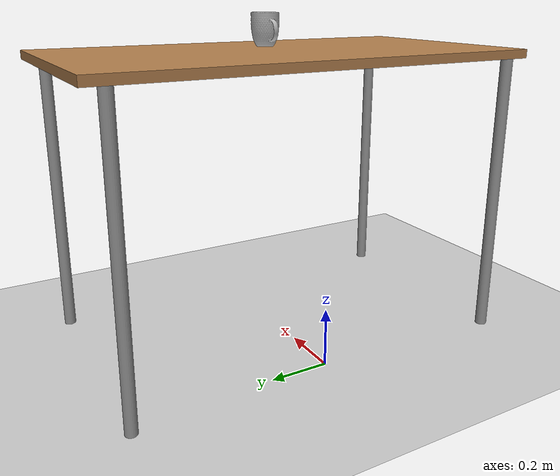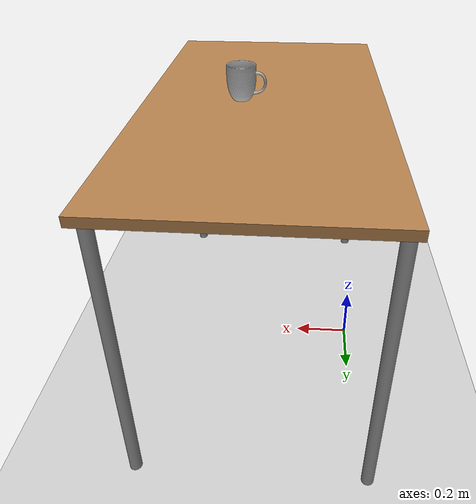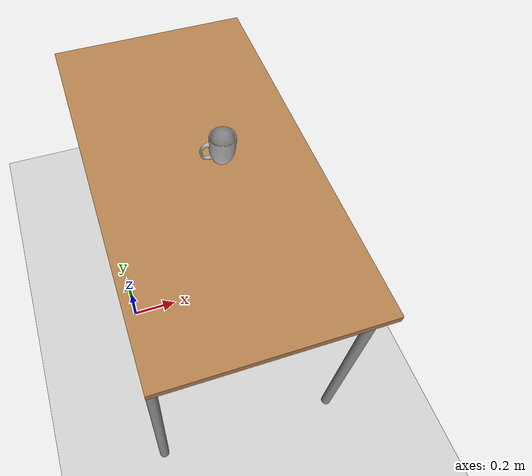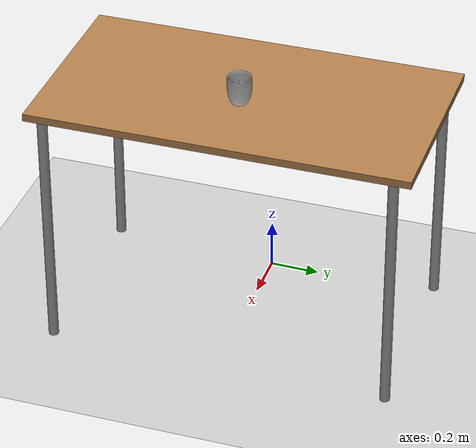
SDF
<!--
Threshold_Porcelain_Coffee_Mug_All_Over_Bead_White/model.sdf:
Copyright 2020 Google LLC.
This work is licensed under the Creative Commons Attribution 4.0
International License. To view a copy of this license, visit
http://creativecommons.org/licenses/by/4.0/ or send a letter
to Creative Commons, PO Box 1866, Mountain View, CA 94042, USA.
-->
<sdf version="1.7">
 <world name="default">
  <light name="sun" type="directional">
   <pose>0 0 10 0 -0 0</pose>
   <diffuse>0.8 0.8 0.8 1</diffuse>
   <specular>0.2 0.2 0.2 1</specular>
   <attenuation>
    <range>1000</range>
    <constant>0.9</constant>
    <linear>0.01</linear>
    <quadratic>0.001</quadratic>
   </attenuation>
   <direction>-0.5 0.1 -0.9</direction>
   <spot><inner_angle>0</inner_angle><outer_angle>0</outer_angle><falloff>0</falloff></spot>
  </light>
  <model name="ground_plane">
   <static>1</static>
   <link name="link">
    <collision name="collision">
     <geometry><plane><normal>0 0 1</normal><size>100 100</size></plane></geometry>
     <surface>
      <contact><collide_bitmask>65535</collide_bitmask></contact>
      <friction><ode><mu>100</mu><mu2>50</mu2></ode></friction>
     </surface>
    </collision>
    <visual name="visual">
     <cast_shadows>0</cast_shadows>
     <geometry><plane><normal>0 0 1</normal><size>100 100</size></plane></geometry>
     <material>
      <script><uri>file://media/materials/scripts/gazebo.material</uri><name>Gazebo/Grey</name></script>
     </material>
    </visual>
   </link>
  </model>
  <gravity>0 0 -9.8</gravity>
  <magnetic_field>6e-06 2.3e-05 -4.2e-05</magnetic_field>
  <atmosphere type="adiabatic"/>
  <physics type="ode">
   <max_step_size>0.001</max_step_size>
   <real_time_factor>1</real_time_factor>
   <real_time_update_rate>1000</real_time_update_rate>
  </physics>
  <scene><ambient>0.4 0.4 0.4 1</ambient><background>0.7 0.7 0.7 1</background><shadows>1</shadows></scene>
  <spherical_coordinates>
   <surface_model>EARTH_WGS84</surface_model>
   <latitude_deg>0</latitude_deg>
   <longitude_deg>0</longitude_deg>
   <elevation>0</elevation>
   <heading_deg>0</heading_deg>
  </spherical_coordinates>
  <include><uri>model://table</uri><pose>0.34 0 0 0 0 1.5708</pose></include>
  <include>
   <uri>https://fuel.gazebosim.org/GoogleResearch/models/Threshold_Porcelain_Coffee_Mug_All_Over_Bead_White</uri>
   <pose>0.4 0 1.02 0 0 0</pose>
  </include>
 </world>
</sdf>

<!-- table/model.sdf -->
<sdf version="1.5">
  <model name="table">
    <static>true</static>
    <link name="link">
      <collision name="surface">
        <pose>0 0 1.0 0 0 0</pose>
        <geometry>
          <box>
            <size>1.5 0.8 0.03</size>
          </box>
        </geometry>
        <surface>
          <friction>
            <ode>
              <mu>0.6</mu>
              <mu2>0.6</mu2>
            </ode>
          </friction>
        </surface>
      </collision>
      <visual name="visual1">
        <pose>0 0 1.0 0 0 0</pose>
        <geometry>
          <box>
            <size>1.5 0.8 0.03</size>
          </box>
        </geometry>
        <material>
          <script>
            <uri>model://media/materials/scripts/gazebo.material</uri>
            <name>Gazebo/Wood</name>
          </script>
        </material>
      </visual>
      <collision name="front_left_leg">
        <pose>0.68 0.38 0.5 0 0 0</pose>
        <geometry>
          <cylinder>
            <radius>0.02</radius>
            <length>1.0</length>
          </cylinder>
        </geometry>
      </collision>
      <visual name="front_left_leg">
        <pose>0.68 0.38 0.5 0 0 0</pose>
        <geometry>
          <cylinder>
            <radius>0.02</radius>
            <length>1.0</length>
          </cylinder>
        </geometry>
        <material>
          <script>
            <uri>model://media/materials/scripts/gazebo.material</uri>
            <name>Gazebo/Grey</name>
          </script>
        </material>
      </visual>
      <collision name="front_right_leg">
        <pose>0.68 -0.38 0.5 0 0 0</pose>
        <geometry>
          <cylinder>
            <radius>0.02</radius>
            <length>1.0</length>
          </cylinder>
        </geometry>
      </collision>
      <visual name="front_right_leg">
        <pose>0.68 -0.38 0.5 0 0 0</pose>
        <geometry>
          <cylinder>
            <radius>0.02</radius>
            <length>1.0</length>
          </cylinder>
        </geometry>
        <material>
          <script>
            <uri>model://media/materials/scripts/gazebo.material</uri>
            <name>Gazebo/Grey</name>
          </script>
        </material>
      </visual>
      <collision name="back_right_leg">
        <pose>-0.68 -0.38 0.5 0 0 0</pose>
        <geometry>
          <cylinder>
            <radius>0.02</radius>
            <length>1.0</length>
          </cylinder>
        </geometry>
      </collision>
      <visual name="back_right_leg">
        <pose>-0.68 -0.38 0.5 0 0 0</pose>
        <geometry>
          <cylinder>
            <radius>0.02</radius>
            <length>1.0</length>
          </cylinder>
        </geometry>
        <material>
          <script>
            <uri>model://media/materials/scripts/gazebo.material</uri>
            <name>Gazebo/Grey</name>
          </script>
        </material>
      </visual>
      <collision name="back_left_leg">
        <pose>-0.68 0.38 0.5 0 0 0</pose>
        <geometry>
          <cylinder>
            <radius>0.02</radius>
            <length>1.0</length>
          </cylinder>
        </geometry>
      </collision>
      <visual name="back_left_leg">
        <pose>-0.68 0.38 0.5 0 0 0</pose>
        <geometry>
          <cylinder>
            <radius>0.02</radius>
            <length>1.0</length>
          </cylinder>
        </geometry>
        <material>
          <script>
            <uri>model://media/materials/scripts/gazebo.material</uri>
            <name>Gazebo/Grey</name>
          </script>
        </material>
      </visual>
    </link>
  </model>
</sdf>

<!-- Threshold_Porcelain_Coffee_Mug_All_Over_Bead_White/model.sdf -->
<sdf version="1.6">
  <model name="Threshold_Porcelain_Coffee_Mug_All_Over_Bead_White">
    <link name="link_0">
      <visual name="visual">
        <geometry>
          <mesh>
            <uri>meshes/model.obj</uri>
          </mesh>
        </geometry>
      </visual>
      <collision name="collision_0">
        <geometry>
          <mesh>
            <uri>meshes/model.obj</uri>
          </mesh>
        </geometry>
      </collision>
    </link>
  </model>
</sdf>
